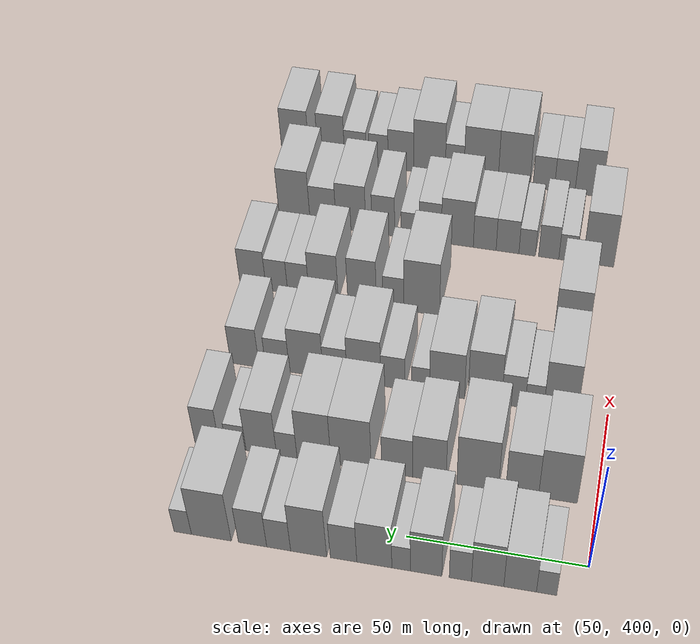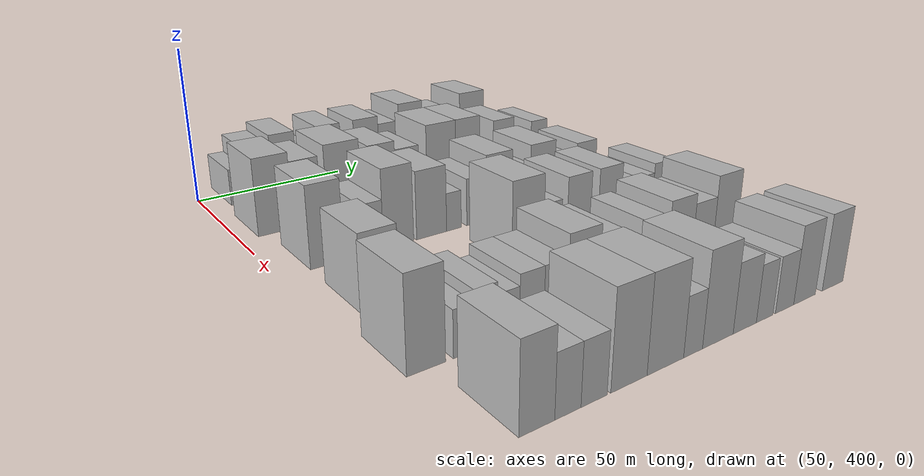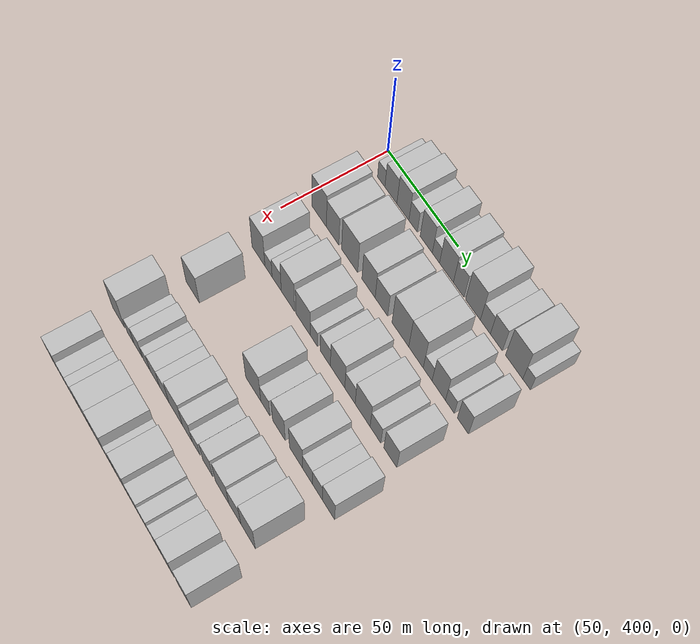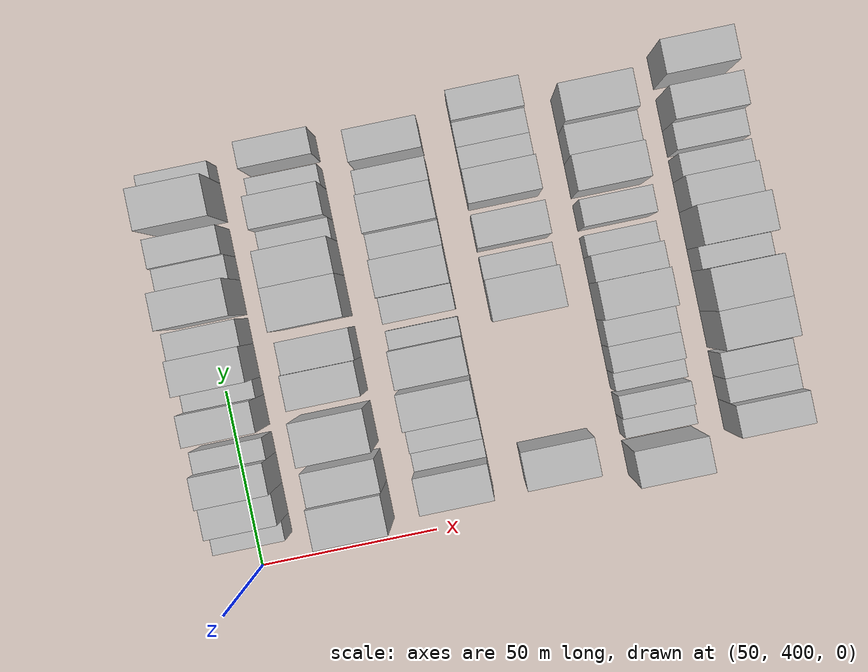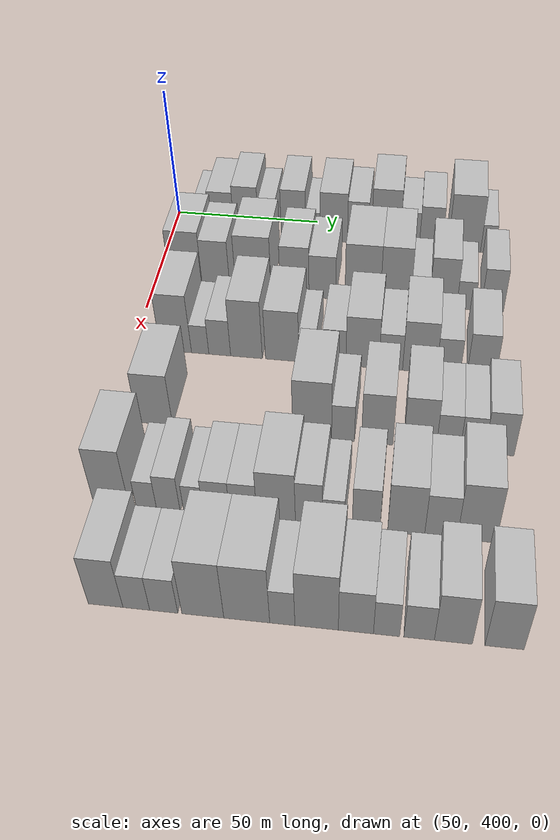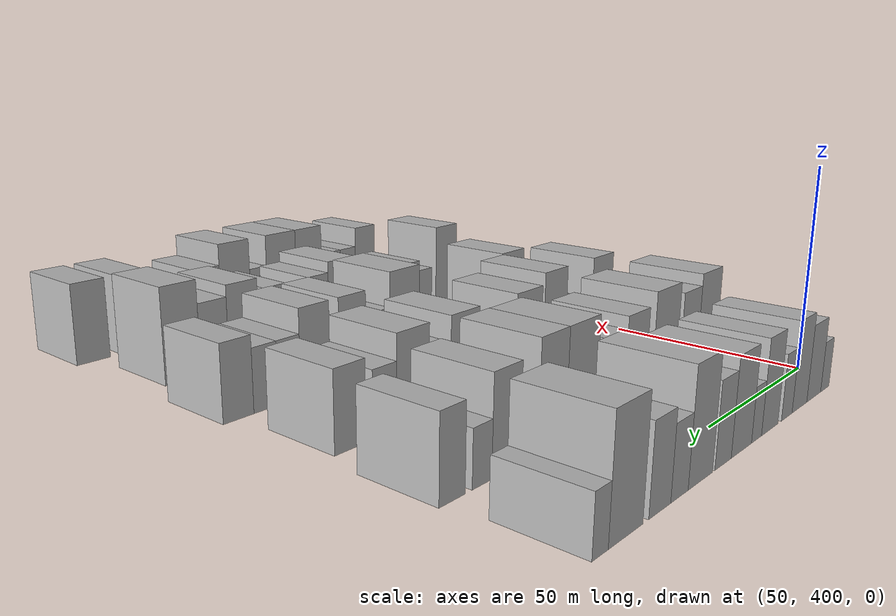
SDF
<sdf version="1.6">
 <world name="default">
  <model name="building_99">
   <static>1</static>
   <pose>50.0000 410.3067 0 0.000000 0.000000 0.000000</pose>
   <link name="link">
    <pose>0 0 6.00 0 0 0</pose>
    <collision name="collision"><geometry><box><size>20.0000 5.4312 12.0000</size></box></geometry></collision>
    <visual name="visual">
     <cast_shadows>0</cast_shadows>
     <geometry><box><size>20.0000 5.4312 12.0000</size></box></geometry>
     <material>
      <script>
       <uri>model://HANNAS_wall/materials/scripts</uri>
       <uri>model://HANNAS_wall/materials/textures</uri>
       <name>vrc/HANNAS_wall</name>
      </script>
     </material>
    </visual>
   </link>
  </model>
  <model name="building_100">
   <static>1</static>
   <pose>50.0000 417.3888 0 0.000000 0.000000 0.000000</pose>
   <link name="link">
    <pose>0 0 9.00 0 0 0</pose>
    <collision name="collision"><geometry><box><size>20.0000 8.7328 18.0000</size></box></geometry></collision>
    <visual name="visual">
     <cast_shadows>0</cast_shadows>
     <geometry><box><size>20.0000 8.7328 18.0000</size></box></geometry>
     <material>
      <script>
       <uri>model://HANNAS_wall/materials/scripts</uri>
       <uri>model://HANNAS_wall/materials/textures</uri>
       <name>vrc/HANNAS_wall</name>
      </script>
     </material>
    </visual>
   </link>
  </model>
  <model name="building_101">
   <static>1</static>
   <pose>50.0000 426.1150 0 0.000000 0.000000 0.000000</pose>
   <link name="link">
    <pose>0 0 10.50 0 0 0</pose>
    <collision name="collision"><geometry><box><size>20.0000 8.7195 21.0000</size></box></geometry></collision>
    <visual name="visual">
     <cast_shadows>0</cast_shadows>
     <geometry><box><size>20.0000 8.7195 21.0000</size></box></geometry>
     <material>
      <script>
       <uri>model://HANNAS_wall/materials/scripts</uri>
       <uri>model://HANNAS_wall/materials/textures</uri>
       <name>vrc/HANNAS_wall</name>
      </script>
     </material>
    </visual>
   </link>
  </model>
  <model name="building_102">
   <static>1</static>
   <pose>50.0000 433.4828 0 0.000000 0.000000 0.000000</pose>
   <link name="link">
    <pose>0 0 7.50 0 0 0</pose>
    <collision name="collision"><geometry><box><size>20.0000 6.0162 15.0000</size></box></geometry></collision>
    <visual name="visual">
     <cast_shadows>0</cast_shadows>
     <geometry><box><size>20.0000 6.0162 15.0000</size></box></geometry>
     <material>
      <script>
       <uri>model://HANNAS_wall/materials/scripts</uri>
       <uri>model://HANNAS_wall/materials/textures</uri>
       <name>vrc/HANNAS_wall</name>
      </script>
     </material>
    </visual>
   </link>
  </model>
  <model name="building_103">
   <static>1</static>
   <pose>50.0000 442.7859 0 0.000000 0.000000 0.000000</pose>
   <link name="link">
    <pose>0 0 10.50 0 0 0</pose>
    <collision name="collision"><geometry><box><size>20.0000 8.5901 21.0000</size></box></geometry></collision>
    <visual name="visual">
     <cast_shadows>0</cast_shadows>
     <geometry><box><size>20.0000 8.5901 21.0000</size></box></geometry>
     <material>
      <script>
       <uri>model://HANNAS_wall/materials/scripts</uri>
       <uri>model://HANNAS_wall/materials/textures</uri>
       <name>vrc/HANNAS_wall</name>
      </script>
     </material>
    </visual>
   </link>
  </model>
  <model name="building_104">
   <static>1</static>
   <pose>50.0000 449.5905 0 0.000000 0.000000 0.000000</pose>
   <link name="link">
    <pose>0 0 6.00 0 0 0</pose>
    <collision name="collision"><geometry><box><size>20.0000 5.0190 12.0000</size></box></geometry></collision>
    <visual name="visual">
     <cast_shadows>0</cast_shadows>
     <geometry><box><size>20.0000 5.0190 12.0000</size></box></geometry>
     <material>
      <script>
       <uri>model://HANNAS_wall/materials/scripts</uri>
       <uri>model://HANNAS_wall/materials/textures</uri>
       <name>vrc/HANNAS_wall</name>
      </script>
     </material>
    </visual>
   </link>
  </model>
  <model name="building_105">
   <static>1</static>
   <pose>50.0000 456.9073 0 0.000000 0.000000 0.000000</pose>
   <link name="link">
    <pose>0 0 10.50 0 0 0</pose>
    <collision name="collision"><geometry><box><size>20.0000 9.6147 21.0000</size></box></geometry></collision>
    <visual name="visual">
     <cast_shadows>0</cast_shadows>
     <geometry><box><size>20.0000 9.6147 21.0000</size></box></geometry>
     <material>
      <script>
       <uri>model://HANNAS_wall/materials/scripts</uri>
       <uri>model://HANNAS_wall/materials/textures</uri>
       <name>vrc/HANNAS_wall</name>
      </script>
     </material>
    </visual>
   </link>
  </model>
  <model name="building_106">
   <static>1</static>
   <pose>50.0000 465.3660 0 0.000000 0.000000 0.000000</pose>
   <link name="link">
    <pose>0 0 9.00 0 0 0</pose>
    <collision name="collision"><geometry><box><size>20.0000 7.3027 18.0000</size></box></geometry></collision>
    <visual name="visual">
     <cast_shadows>0</cast_shadows>
     <geometry><box><size>20.0000 7.3027 18.0000</size></box></geometry>
     <material>
      <script>
       <uri>model://HANNAS_wall/materials/scripts</uri>
       <uri>model://HANNAS_wall/materials/textures</uri>
       <name>vrc/HANNAS_wall</name>
      </script>
     </material>
    </visual>
   </link>
  </model>
  <model name="building_107">
   <static>1</static>
   <pose>50.0000 475.0083 0 0.000000 0.000000 0.000000</pose>
   <link name="link">
    <pose>0 0 12.00 0 0 0</pose>
    <collision name="collision"><geometry><box><size>20.0000 9.9820 24.0000</size></box></geometry></collision>
    <visual name="visual">
     <cast_shadows>0</cast_shadows>
     <geometry><box><size>20.0000 9.9820 24.0000</size></box></geometry>
     <material>
      <script>
       <uri>model://HANNAS_wall/materials/scripts</uri>
       <uri>model://HANNAS_wall/materials/textures</uri>
       <name>vrc/HANNAS_wall</name>
      </script>
     </material>
    </visual>
   </link>
  </model>
  <model name="building_108">
   <static>1</static>
   <pose>50.0000 483.3332 0 0.000000 0.000000 0.000000</pose>
   <link name="link">
    <pose>0 0 7.50 0 0 0</pose>
    <collision name="collision"><geometry><box><size>20.0000 6.6677 15.0000</size></box></geometry></collision>
    <visual name="visual">
     <cast_shadows>0</cast_shadows>
     <geometry><box><size>20.0000 6.6677 15.0000</size></box></geometry>
     <material>
      <script>
       <uri>model://HANNAS_wall/materials/scripts</uri>
       <uri>model://HANNAS_wall/materials/textures</uri>
       <name>vrc/HANNAS_wall</name>
      </script>
     </material>
    </visual>
   </link>
  </model>
  <model name="building_109">
   <static>1</static>
   <pose>50.0000 490.6267 0 0.000000 0.000000 0.000000</pose>
   <link name="link">
    <pose>0 0 9.00 0 0 0</pose>
    <collision name="collision"><geometry><box><size>20.0000 7.9194 18.0000</size></box></geometry></collision>
    <visual name="visual">
     <cast_shadows>0</cast_shadows>
     <geometry><box><size>20.0000 7.9194 18.0000</size></box></geometry>
     <material>
      <script>
       <uri>model://HANNAS_wall/materials/scripts</uri>
       <uri>model://HANNAS_wall/materials/textures</uri>
       <name>vrc/HANNAS_wall</name>
      </script>
     </material>
    </visual>
   </link>
  </model>
  <model name="building_110">
   <static>1</static>
   <pose>50.0000 502.1823 0 0.000000 0.000000 0.000000</pose>
   <link name="link">
    <pose>0 0 12.00 0 0 0</pose>
    <collision name="collision"><geometry><box><size>20.0000 11.1917 24.0000</size></box></geometry></collision>
    <visual name="visual">
     <cast_shadows>0</cast_shadows>
     <geometry><box><size>20.0000 11.1917 24.0000</size></box></geometry>
     <material>
      <script>
       <uri>model://HANNAS_wall/materials/scripts</uri>
       <uri>model://HANNAS_wall/materials/textures</uri>
       <name>vrc/HANNAS_wall</name>
      </script>
     </material>
    </visual>
   </link>
  </model>
  <model name="building_111">
   <static>1</static>
   <pose>50.0000 510.2462 0 0.000000 0.000000 0.000000</pose>
   <link name="link">
    <pose>0 0 6.00 0 0 0</pose>
    <collision name="collision"><geometry><box><size>20.0000 4.9362 12.0000</size></box></geometry></collision>
    <visual name="visual">
     <cast_shadows>0</cast_shadows>
     <geometry><box><size>20.0000 4.9362 12.0000</size></box></geometry>
     <material>
      <script>
       <uri>model://HANNAS_wall/materials/scripts</uri>
       <uri>model://HANNAS_wall/materials/textures</uri>
       <name>vrc/HANNAS_wall</name>
      </script>
     </material>
    </visual>
   </link>
  </model>
  <model name="building_211">
   <static>1</static>
   <pose>79.0000 410.9110 0 0.000000 0.000000 0.000000</pose>
   <link name="link">
    <pose>0 0 12.00 0 0 0</pose>
    <collision name="collision"><geometry><box><size>20.0000 10.8549 24.0000</size></box></geometry></collision>
    <visual name="visual">
     <cast_shadows>0</cast_shadows>
     <geometry><box><size>20.0000 10.8549 24.0000</size></box></geometry>
     <material>
      <script>
       <uri>model://HANNAS_wall/materials/scripts</uri>
       <uri>model://HANNAS_wall/materials/textures</uri>
       <name>vrc/HANNAS_wall</name>
      </script>
     </material>
    </visual>
   </link>
  </model>
  <model name="building_212">
   <static>1</static>
   <pose>79.0000 420.9466 0 0.000000 0.000000 0.000000</pose>
   <link name="link">
    <pose>0 0 10.50 0 0 0</pose>
    <collision name="collision"><geometry><box><size>20.0000 9.2163 21.0000</size></box></geometry></collision>
    <visual name="visual">
     <cast_shadows>0</cast_shadows>
     <geometry><box><size>20.0000 9.2163 21.0000</size></box></geometry>
     <material>
      <script>
       <uri>model://HANNAS_wall/materials/scripts</uri>
       <uri>model://HANNAS_wall/materials/textures</uri>
       <name>vrc/HANNAS_wall</name>
      </script>
     </material>
    </visual>
   </link>
  </model>
  <model name="building_213">
   <static>1</static>
   <pose>79.0000 433.4388 0 0.000000 0.000000 0.000000</pose>
   <link name="link">
    <pose>0 0 12.00 0 0 0</pose>
    <collision name="collision"><geometry><box><size>20.0000 11.7680 24.0000</size></box></geometry></collision>
    <visual name="visual">
     <cast_shadows>0</cast_shadows>
     <geometry><box><size>20.0000 11.7680 24.0000</size></box></geometry>
     <material>
      <script>
       <uri>model://HANNAS_wall/materials/scripts</uri>
       <uri>model://HANNAS_wall/materials/textures</uri>
       <name>vrc/HANNAS_wall</name>
      </script>
     </material>
    </visual>
   </link>
  </model>
  <model name="building_214">
   <static>1</static>
   <pose>79.0000 447.0718 0 0.000000 0.000000 0.000000</pose>
   <link name="link">
    <pose>0 0 10.50 0 0 0</pose>
    <collision name="collision"><geometry><box><size>20.0000 9.4981 21.0000</size></box></geometry></collision>
    <visual name="visual">
     <cast_shadows>0</cast_shadows>
     <geometry><box><size>20.0000 9.4981 21.0000</size></box></geometry>
     <material>
      <script>
       <uri>model://HANNAS_wall/materials/scripts</uri>
       <uri>model://HANNAS_wall/materials/textures</uri>
       <name>vrc/HANNAS_wall</name>
      </script>
     </material>
    </visual>
   </link>
  </model>
  <model name="building_215">
   <static>1</static>
   <pose>79.0000 456.2429 0 0.000000 0.000000 0.000000</pose>
   <link name="link">
    <pose>0 0 9.00 0 0 0</pose>
    <collision name="collision"><geometry><box><size>20.0000 8.8441 18.0000</size></box></geometry></collision>
    <visual name="visual">
     <cast_shadows>0</cast_shadows>
     <geometry><box><size>20.0000 8.8441 18.0000</size></box></geometry>
     <material>
      <script>
       <uri>model://HANNAS_wall/materials/scripts</uri>
       <uri>model://HANNAS_wall/materials/textures</uri>
       <name>vrc/HANNAS_wall</name>
      </script>
     </material>
    </visual>
   </link>
  </model>
  <model name="building_216">
   <static>1</static>
   <pose>79.0000 469.4666 0 0.000000 0.000000 0.000000</pose>
   <link name="link">
    <pose>0 0 12.00 0 0 0</pose>
    <collision name="collision"><geometry><box><size>20.0000 11.6032 24.0000</size></box></geometry></collision>
    <visual name="visual">
     <cast_shadows>0</cast_shadows>
     <geometry><box><size>20.0000 11.6032 24.0000</size></box></geometry>
     <material>
      <script>
       <uri>model://HANNAS_wall/materials/scripts</uri>
       <uri>model://HANNAS_wall/materials/textures</uri>
       <name>vrc/HANNAS_wall</name>
      </script>
     </material>
    </visual>
   </link>
  </model>
  <model name="building_217">
   <static>1</static>
   <pose>79.0000 480.1981 0 0.000000 0.000000 0.000000</pose>
   <link name="link">
    <pose>0 0 12.00 0 0 0</pose>
    <collision name="collision"><geometry><box><size>20.0000 9.8598 24.0000</size></box></geometry></collision>
    <visual name="visual">
     <cast_shadows>0</cast_shadows>
     <geometry><box><size>20.0000 9.8598 24.0000</size></box></geometry>
     <material>
      <script>
       <uri>model://HANNAS_wall/materials/scripts</uri>
       <uri>model://HANNAS_wall/materials/textures</uri>
       <name>vrc/HANNAS_wall</name>
      </script>
     </material>
    </visual>
   </link>
  </model>
  <model name="building_218">
   <static>1</static>
   <pose>79.0000 488.1156 0 0.000000 0.000000 0.000000</pose>
   <link name="link">
    <pose>0 0 6.00 0 0 0</pose>
    <collision name="collision"><geometry><box><size>20.0000 5.9753 12.0000</size></box></geometry></collision>
    <visual name="visual">
     <cast_shadows>0</cast_shadows>
     <geometry><box><size>20.0000 5.9753 12.0000</size></box></geometry>
     <material>
      <script>
       <uri>model://HANNAS_wall/materials/scripts</uri>
       <uri>model://HANNAS_wall/materials/textures</uri>
       <name>vrc/HANNAS_wall</name>
      </script>
     </material>
    </visual>
   </link>
  </model>
  <model name="building_219">
   <static>1</static>
   <pose>79.0000 495.5623 0 0.000000 0.000000 0.000000</pose>
   <link name="link">
    <pose>0 0 10.50 0 0 0</pose>
    <collision name="collision"><geometry><box><size>20.0000 8.9180 21.0000</size></box></geometry></collision>
    <visual name="visual">
     <cast_shadows>0</cast_shadows>
     <geometry><box><size>20.0000 8.9180 21.0000</size></box></geometry>
     <material>
      <script>
       <uri>model://HANNAS_wall/materials/scripts</uri>
       <uri>model://HANNAS_wall/materials/textures</uri>
       <name>vrc/HANNAS_wall</name>
      </script>
     </material>
    </visual>
   </link>
  </model>
  <model name="building_220">
   <static>1</static>
   <pose>79.0000 502.9385 0 0.000000 0.000000 0.000000</pose>
   <link name="link">
    <pose>0 0 6.00 0 0 0</pose>
    <collision name="collision"><geometry><box><size>20.0000 5.8344 12.0000</size></box></geometry></collision>
    <visual name="visual">
     <cast_shadows>0</cast_shadows>
     <geometry><box><size>20.0000 5.8344 12.0000</size></box></geometry>
     <material>
      <script>
       <uri>model://HANNAS_wall/materials/scripts</uri>
       <uri>model://HANNAS_wall/materials/textures</uri>
       <name>vrc/HANNAS_wall</name>
      </script>
     </material>
    </visual>
   </link>
  </model>
  <model name="building_221">
   <static>1</static>
   <pose>79.0000 511.4904 0 0.000000 0.000000 0.000000</pose>
   <link name="link">
    <pose>0 0 9.00 0 0 0</pose>
    <collision name="collision"><geometry><box><size>20.0000 7.2694 18.0000</size></box></geometry></collision>
    <visual name="visual">
     <cast_shadows>0</cast_shadows>
     <geometry><box><size>20.0000 7.2694 18.0000</size></box></geometry>
     <material>
      <script>
       <uri>model://HANNAS_wall/materials/scripts</uri>
       <uri>model://HANNAS_wall/materials/textures</uri>
       <name>vrc/HANNAS_wall</name>
      </script>
     </material>
    </visual>
   </link>
  </model>
  <model name="building_331">
   <static>1</static>
   <pose>108.0000 413.7506 0 0.000000 0.000000 0.000000</pose>
   <link name="link">
    <pose>0 0 12.00 0 0 0</pose>
    <collision name="collision"><geometry><box><size>20.0000 9.8677 24.0000</size></box></geometry></collision>
    <visual name="visual">
     <cast_shadows>0</cast_shadows>
     <geometry><box><size>20.0000 9.8677 24.0000</size></box></geometry>
     <material>
      <script>
       <uri>model://HANNAS_wall/materials/scripts</uri>
       <uri>model://HANNAS_wall/materials/textures</uri>
       <name>vrc/HANNAS_wall</name>
      </script>
     </material>
    </visual>
   </link>
  </model>
  <model name="building_332">
   <static>1</static>
   <pose>108.0000 421.4104 0 0.000000 0.000000 0.000000</pose>
   <link name="link">
    <pose>0 0 6.00 0 0 0</pose>
    <collision name="collision"><geometry><box><size>20.0000 5.4518 12.0000</size></box></geometry></collision>
    <visual name="visual">
     <cast_shadows>0</cast_shadows>
     <geometry><box><size>20.0000 5.4518 12.0000</size></box></geometry>
     <material>
      <script>
       <uri>model://HANNAS_wall/materials/scripts</uri>
       <uri>model://HANNAS_wall/materials/textures</uri>
       <name>vrc/HANNAS_wall</name>
      </script>
     </material>
    </visual>
   </link>
  </model>
  <model name="building_333">
   <static>1</static>
   <pose>108.0000 427.5654 0 0.000000 0.000000 0.000000</pose>
   <link name="link">
    <pose>0 0 7.50 0 0 0</pose>
    <collision name="collision"><geometry><box><size>20.0000 6.8582 15.0000</size></box></geometry></collision>
    <visual name="visual">
     <cast_shadows>0</cast_shadows>
     <geometry><box><size>20.0000 6.8582 15.0000</size></box></geometry>
     <material>
      <script>
       <uri>model://HANNAS_wall/materials/scripts</uri>
       <uri>model://HANNAS_wall/materials/textures</uri>
       <name>vrc/HANNAS_wall</name>
      </script>
     </material>
    </visual>
   </link>
  </model>
  <model name="building_334">
   <static>1</static>
   <pose>108.0000 435.9424 0 0.000000 0.000000 0.000000</pose>
   <link name="link">
    <pose>0 0 12.00 0 0 0</pose>
    <collision name="collision"><geometry><box><size>20.0000 9.8958 24.0000</size></box></geometry></collision>
    <visual name="visual">
     <cast_shadows>0</cast_shadows>
     <geometry><box><size>20.0000 9.8958 24.0000</size></box></geometry>
     <material>
      <script>
       <uri>model://HANNAS_wall/materials/scripts</uri>
       <uri>model://HANNAS_wall/materials/textures</uri>
       <name>vrc/HANNAS_wall</name>
      </script>
     </material>
    </visual>
   </link>
  </model>
  <model name="building_335">
   <static>1</static>
   <pose>108.0000 447.0856 0 0.000000 0.000000 0.000000</pose>
   <link name="link">
    <pose>0 0 10.50 0 0 0</pose>
    <collision name="collision"><geometry><box><size>20.0000 10.3907 21.0000</size></box></geometry></collision>
    <visual name="visual">
     <cast_shadows>0</cast_shadows>
     <geometry><box><size>20.0000 10.3907 21.0000</size></box></geometry>
     <material>
      <script>
       <uri>model://HANNAS_wall/materials/scripts</uri>
       <uri>model://HANNAS_wall/materials/textures</uri>
       <name>vrc/HANNAS_wall</name>
      </script>
     </material>
    </visual>
   </link>
  </model>
  <model name="building_336">
   <static>1</static>
   <pose>108.0000 454.9230 0 0.000000 0.000000 0.000000</pose>
   <link name="link">
    <pose>0 0 6.00 0 0 0</pose>
    <collision name="collision"><geometry><box><size>20.0000 5.2842 12.0000</size></box></geometry></collision>
    <visual name="visual">
     <cast_shadows>0</cast_shadows>
     <geometry><box><size>20.0000 5.2842 12.0000</size></box></geometry>
     <material>
      <script>
       <uri>model://HANNAS_wall/materials/scripts</uri>
       <uri>model://HANNAS_wall/materials/textures</uri>
       <name>vrc/HANNAS_wall</name>
      </script>
     </material>
    </visual>
   </link>
  </model>
  <model name="building_337">
   <static>1</static>
   <pose>108.0000 463.1570 0 0.000000 0.000000 0.000000</pose>
   <link name="link">
    <pose>0 0 7.50 0 0 0</pose>
    <collision name="collision"><geometry><box><size>20.0000 7.1838 15.0000</size></box></geometry></collision>
    <visual name="visual">
     <cast_shadows>0</cast_shadows>
     <geometry><box><size>20.0000 7.1838 15.0000</size></box></geometry>
     <material>
      <script>
       <uri>model://HANNAS_wall/materials/scripts</uri>
       <uri>model://HANNAS_wall/materials/textures</uri>
       <name>vrc/HANNAS_wall</name>
      </script>
     </material>
    </visual>
   </link>
  </model>
  <model name="building_338">
   <static>1</static>
   <pose>108.0000 471.8195 0 0.000000 0.000000 0.000000</pose>
   <link name="link">
    <pose>0 0 10.50 0 0 0</pose>
    <collision name="collision"><geometry><box><size>20.0000 10.1413 21.0000</size></box></geometry></collision>
    <visual name="visual">
     <cast_shadows>0</cast_shadows>
     <geometry><box><size>20.0000 10.1413 21.0000</size></box></geometry>
     <material>
      <script>
       <uri>model://HANNAS_wall/materials/scripts</uri>
       <uri>model://HANNAS_wall/materials/textures</uri>
       <name>vrc/HANNAS_wall</name>
      </script>
     </material>
    </visual>
   </link>
  </model>
  <model name="building_339">
   <static>1</static>
   <pose>108.0000 480.5008 0 0.000000 0.000000 0.000000</pose>
   <link name="link">
    <pose>0 0 7.50 0 0 0</pose>
    <collision name="collision"><geometry><box><size>20.0000 7.2212 15.0000</size></box></geometry></collision>
    <visual name="visual">
     <cast_shadows>0</cast_shadows>
     <geometry><box><size>20.0000 7.2212 15.0000</size></box></geometry>
     <material>
      <script>
       <uri>model://HANNAS_wall/materials/scripts</uri>
       <uri>model://HANNAS_wall/materials/textures</uri>
       <name>vrc/HANNAS_wall</name>
      </script>
     </material>
    </visual>
   </link>
  </model>
  <model name="building_340">
   <static>1</static>
   <pose>108.0000 489.2400 0 0.000000 0.000000 0.000000</pose>
   <link name="link">
    <pose>0 0 10.50 0 0 0</pose>
    <collision name="collision"><geometry><box><size>20.0000 10.2573 21.0000</size></box></geometry></collision>
    <visual name="visual">
     <cast_shadows>0</cast_shadows>
     <geometry><box><size>20.0000 10.2573 21.0000</size></box></geometry>
     <material>
      <script>
       <uri>model://HANNAS_wall/materials/scripts</uri>
       <uri>model://HANNAS_wall/materials/textures</uri>
       <name>vrc/HANNAS_wall</name>
      </script>
     </material>
    </visual>
   </link>
  </model>
  <model name="building_341">
   <static>1</static>
   <pose>108.0000 497.9916 0 0.000000 0.000000 0.000000</pose>
   <link name="link">
    <pose>0 0 7.50 0 0 0</pose>
    <collision name="collision"><geometry><box><size>20.0000 7.2459 15.0000</size></box></geometry></collision>
    <visual name="visual">
     <cast_shadows>0</cast_shadows>
     <geometry><box><size>20.0000 7.2459 15.0000</size></box></geometry>
     <material>
      <script>
       <uri>model://HANNAS_wall/materials/scripts</uri>
       <uri>model://HANNAS_wall/materials/textures</uri>
       <name>vrc/HANNAS_wall</name>
      </script>
     </material>
    </visual>
   </link>
  </model>
  <model name="building_342">
   <static>1</static>
   <pose>108.0000 507.9660 0 0.000000 0.000000 0.000000</pose>
   <link name="link">
    <pose>0 0 9.00 0 0 0</pose>
    <collision name="collision"><geometry><box><size>20.0000 8.7028 18.0000</size></box></geometry></collision>
    <visual name="visual">
     <cast_shadows>0</cast_shadows>
     <geometry><box><size>20.0000 8.7028 18.0000</size></box></geometry>
     <material>
      <script>
       <uri>model://HANNAS_wall/materials/scripts</uri>
       <uri>model://HANNAS_wall/materials/textures</uri>
       <name>vrc/HANNAS_wall</name>
      </script>
     </material>
    </visual>
   </link>
  </model>
  <model name="building_445">
   <static>1</static>
   <pose>137.0000 414.0259 0 0.000000 0.000000 0.000000</pose>
   <link name="link">
    <pose>0 0 10.50 0 0 0</pose>
    <collision name="collision"><geometry><box><size>20.0000 10.4635 21.0000</size></box></geometry></collision>
    <visual name="visual">
     <cast_shadows>0</cast_shadows>
     <geometry><box><size>20.0000 10.4635 21.0000</size></box></geometry>
     <material>
      <script>
       <uri>model://HANNAS_wall/materials/scripts</uri>
       <uri>model://HANNAS_wall/materials/textures</uri>
       <name>vrc/HANNAS_wall</name>
      </script>
     </material>
    </visual>
   </link>
  </model>
  <model name="building_446">
   <static>1</static>
   <pose>137.0000 459.9204 0 0.000000 0.000000 0.000000</pose>
   <link name="link">
    <pose>0 0 12.00 0 0 0</pose>
    <collision name="collision"><geometry><box><size>20.0000 11.1085 24.0000</size></box></geometry></collision>
    <visual name="visual">
     <cast_shadows>0</cast_shadows>
     <geometry><box><size>20.0000 11.1085 24.0000</size></box></geometry>
     <material>
      <script>
       <uri>model://HANNAS_wall/materials/scripts</uri>
       <uri>model://HANNAS_wall/materials/textures</uri>
       <name>vrc/HANNAS_wall</name>
      </script>
     </material>
    </visual>
   </link>
  </model>
  <model name="building_447">
   <static>1</static>
   <pose>137.0000 468.7341 0 0.000000 0.000000 0.000000</pose>
   <link name="link">
    <pose>0 0 7.50 0 0 0</pose>
    <collision name="collision"><geometry><box><size>20.0000 6.5189 15.0000</size></box></geometry></collision>
    <visual name="visual">
     <cast_shadows>0</cast_shadows>
     <geometry><box><size>20.0000 6.5189 15.0000</size></box></geometry>
     <material>
      <script>
       <uri>model://HANNAS_wall/materials/scripts</uri>
       <uri>model://HANNAS_wall/materials/textures</uri>
       <name>vrc/HANNAS_wall</name>
      </script>
     </material>
    </visual>
   </link>
  </model>
  <model name="building_448">
   <static>1</static>
   <pose>137.0000 478.4845 0 0.000000 0.000000 0.000000</pose>
   <link name="link">
    <pose>0 0 10.50 0 0 0</pose>
    <collision name="collision"><geometry><box><size>20.0000 8.9819 21.0000</size></box></geometry></collision>
    <visual name="visual">
     <cast_shadows>0</cast_shadows>
     <geometry><box><size>20.0000 8.9819 21.0000</size></box></geometry>
     <material>
      <script>
       <uri>model://HANNAS_wall/materials/scripts</uri>
       <uri>model://HANNAS_wall/materials/textures</uri>
       <name>vrc/HANNAS_wall</name>
      </script>
     </material>
    </visual>
   </link>
  </model>
  <model name="building_449">
   <static>1</static>
   <pose>137.0000 490.5918 0 0.000000 0.000000 0.000000</pose>
   <link name="link">
    <pose>0 0 10.50 0 0 0</pose>
    <collision name="collision"><geometry><box><size>20.0000 9.2328 21.0000</size></box></geometry></collision>
    <visual name="visual">
     <cast_shadows>0</cast_shadows>
     <geometry><box><size>20.0000 9.2328 21.0000</size></box></geometry>
     <material>
      <script>
       <uri>model://HANNAS_wall/materials/scripts</uri>
       <uri>model://HANNAS_wall/materials/textures</uri>
       <name>vrc/HANNAS_wall</name>
      </script>
     </material>
    </visual>
   </link>
  </model>
  <model name="building_450">
   <static>1</static>
   <pose>137.0000 498.5825 0 0.000000 0.000000 0.000000</pose>
   <link name="link">
    <pose>0 0 7.50 0 0 0</pose>
    <collision name="collision"><geometry><box><size>20.0000 6.7486 15.0000</size></box></geometry></collision>
    <visual name="visual">
     <cast_shadows>0</cast_shadows>
     <geometry><box><size>20.0000 6.7486 15.0000</size></box></geometry>
     <material>
      <script>
       <uri>model://HANNAS_wall/materials/scripts</uri>
       <uri>model://HANNAS_wall/materials/textures</uri>
       <name>vrc/HANNAS_wall</name>
      </script>
     </material>
    </visual>
   </link>
  </model>
  <model name="building_451">
   <static>1</static>
   <pose>137.0000 505.3755 0 0.000000 0.000000 0.000000</pose>
   <link name="link">
    <pose>0 0 7.50 0 0 0</pose>
    <collision name="collision"><geometry><box><size>20.0000 6.8374 15.0000</size></box></geometry></collision>
    <visual name="visual">
     <cast_shadows>0</cast_shadows>
     <geometry><box><size>20.0000 6.8374 15.0000</size></box></geometry>
     <material>
      <script>
       <uri>model://HANNAS_wall/materials/scripts</uri>
       <uri>model://HANNAS_wall/materials/textures</uri>
       <name>vrc/HANNAS_wall</name>
      </script>
     </material>
    </visual>
   </link>
  </model>
  <model name="building_452">
   <static>1</static>
   <pose>137.0000 512.9288 0 0.000000 0.000000 0.000000</pose>
   <link name="link">
    <pose>0 0 9.00 0 0 0</pose>
    <collision name="collision"><geometry><box><size>20.0000 8.2692 18.0000</size></box></geometry></collision>
    <visual name="visual">
     <cast_shadows>0</cast_shadows>
     <geometry><box><size>20.0000 8.2692 18.0000</size></box></geometry>
     <material>
      <script>
       <uri>model://HANNAS_wall/materials/scripts</uri>
       <uri>model://HANNAS_wall/materials/textures</uri>
       <name>vrc/HANNAS_wall</name>
      </script>
     </material>
    </visual>
   </link>
  </model>
  <model name="building_559">
   <static>1</static>
   <pose>166.0000 408.9972 0 0.000000 0.000000 0.000000</pose>
   <link name="link">
    <pose>0 0 12.00 0 0 0</pose>
    <collision name="collision"><geometry><box><size>20.0000 9.7505 24.0000</size></box></geometry></collision>
    <visual name="visual">
     <cast_shadows>0</cast_shadows>
     <geometry><box><size>20.0000 9.7505 24.0000</size></box></geometry>
     <material>
      <script>
       <uri>model://HANNAS_wall/materials/scripts</uri>
       <uri>model://HANNAS_wall/materials/textures</uri>
       <name>vrc/HANNAS_wall</name>
      </script>
     </material>
    </visual>
   </link>
  </model>
  <model name="building_560">
   <static>1</static>
   <pose>166.0000 418.6507 0 0.000000 0.000000 0.000000</pose>
   <link name="link">
    <pose>0 0 6.00 0 0 0</pose>
    <collision name="collision"><geometry><box><size>20.0000 5.5566 12.0000</size></box></geometry></collision>
    <visual name="visual">
     <cast_shadows>0</cast_shadows>
     <geometry><box><size>20.0000 5.5566 12.0000</size></box></geometry>
     <material>
      <script>
       <uri>model://HANNAS_wall/materials/scripts</uri>
       <uri>model://HANNAS_wall/materials/textures</uri>
       <name>vrc/HANNAS_wall</name>
      </script>
     </material>
    </visual>
   </link>
  </model>
  <model name="building_561">
   <static>1</static>
   <pose>166.0000 424.6355 0 0.000000 0.000000 0.000000</pose>
   <link name="link">
    <pose>0 0 7.50 0 0 0</pose>
    <collision name="collision"><geometry><box><size>20.0000 6.4130 15.0000</size></box></geometry></collision>
    <visual name="visual">
     <cast_shadows>0</cast_shadows>
     <geometry><box><size>20.0000 6.4130 15.0000</size></box></geometry>
     <material>
      <script>
       <uri>model://HANNAS_wall/materials/scripts</uri>
       <uri>model://HANNAS_wall/materials/textures</uri>
       <name>vrc/HANNAS_wall</name>
      </script>
     </material>
    </visual>
   </link>
  </model>
  <model name="building_562">
   <static>1</static>
   <pose>166.0000 431.4591 0 0.000000 0.000000 0.000000</pose>
   <link name="link">
    <pose>0 0 6.00 0 0 0</pose>
    <collision name="collision"><geometry><box><size>20.0000 5.2341 12.0000</size></box></geometry></collision>
    <visual name="visual">
     <cast_shadows>0</cast_shadows>
     <geometry><box><size>20.0000 5.2341 12.0000</size></box></geometry>
     <material>
      <script>
       <uri>model://HANNAS_wall/materials/scripts</uri>
       <uri>model://HANNAS_wall/materials/textures</uri>
       <name>vrc/HANNAS_wall</name>
      </script>
     </material>
    </visual>
   </link>
  </model>
  <model name="building_563">
   <static>1</static>
   <pose>166.0000 437.7130 0 0.000000 0.000000 0.000000</pose>
   <link name="link">
    <pose>0 0 7.50 0 0 0</pose>
    <collision name="collision"><geometry><box><size>20.0000 7.2738 15.0000</size></box></geometry></collision>
    <visual name="visual">
     <cast_shadows>0</cast_shadows>
     <geometry><box><size>20.0000 7.2738 15.0000</size></box></geometry>
     <material>
      <script>
       <uri>model://HANNAS_wall/materials/scripts</uri>
       <uri>model://HANNAS_wall/materials/textures</uri>
       <name>vrc/HANNAS_wall</name>
      </script>
     </material>
    </visual>
   </link>
  </model>
  <model name="building_564">
   <static>1</static>
   <pose>166.0000 445.0038 0 0.000000 0.000000 0.000000</pose>
   <link name="link">
    <pose>0 0 7.50 0 0 0</pose>
    <collision name="collision"><geometry><box><size>20.0000 7.3078 15.0000</size></box></geometry></collision>
    <visual name="visual">
     <cast_shadows>0</cast_shadows>
     <geometry><box><size>20.0000 7.3078 15.0000</size></box></geometry>
     <material>
      <script>
       <uri>model://HANNAS_wall/materials/scripts</uri>
       <uri>model://HANNAS_wall/materials/textures</uri>
       <name>vrc/HANNAS_wall</name>
      </script>
     </material>
    </visual>
   </link>
  </model>
  <model name="building_565">
   <static>1</static>
   <pose>166.0000 453.8010 0 0.000000 0.000000 0.000000</pose>
   <link name="link">
    <pose>0 0 10.50 0 0 0</pose>
    <collision name="collision"><geometry><box><size>20.0000 10.2865 21.0000</size></box></geometry></collision>
    <visual name="visual">
     <cast_shadows>0</cast_shadows>
     <geometry><box><size>20.0000 10.2865 21.0000</size></box></geometry>
     <material>
      <script>
       <uri>model://HANNAS_wall/materials/scripts</uri>
       <uri>model://HANNAS_wall/materials/textures</uri>
       <name>vrc/HANNAS_wall</name>
      </script>
     </material>
    </visual>
   </link>
  </model>
  <model name="building_566">
   <static>1</static>
   <pose>166.0000 462.5458 0 0.000000 0.000000 0.000000</pose>
   <link name="link">
    <pose>0 0 9.00 0 0 0</pose>
    <collision name="collision"><geometry><box><size>20.0000 7.2031 18.0000</size></box></geometry></collision>
    <visual name="visual">
     <cast_shadows>0</cast_shadows>
     <geometry><box><size>20.0000 7.2031 18.0000</size></box></geometry>
     <material>
      <script>
       <uri>model://HANNAS_wall/materials/scripts</uri>
       <uri>model://HANNAS_wall/materials/textures</uri>
       <name>vrc/HANNAS_wall</name>
      </script>
     </material>
    </visual>
   </link>
  </model>
  <model name="building_567">
   <static>1</static>
   <pose>166.0000 469.0612 0 0.000000 0.000000 0.000000</pose>
   <link name="link">
    <pose>0 0 6.00 0 0 0</pose>
    <collision name="collision"><geometry><box><size>20.0000 5.8278 12.0000</size></box></geometry></collision>
    <visual name="visual">
     <cast_shadows>0</cast_shadows>
     <geometry><box><size>20.0000 5.8278 12.0000</size></box></geometry>
     <material>
      <script>
       <uri>model://HANNAS_wall/materials/scripts</uri>
       <uri>model://HANNAS_wall/materials/textures</uri>
       <name>vrc/HANNAS_wall</name>
      </script>
     </material>
    </visual>
   </link>
  </model>
  <model name="building_568">
   <static>1</static>
   <pose>166.0000 477.6614 0 0.000000 0.000000 0.000000</pose>
   <link name="link">
    <pose>0 0 9.00 0 0 0</pose>
    <collision name="collision"><geometry><box><size>20.0000 7.3724 18.0000</size></box></geometry></collision>
    <visual name="visual">
     <cast_shadows>0</cast_shadows>
     <geometry><box><size>20.0000 7.3724 18.0000</size></box></geometry>
     <material>
      <script>
       <uri>model://HANNAS_wall/materials/scripts</uri>
       <uri>model://HANNAS_wall/materials/textures</uri>
       <name>vrc/HANNAS_wall</name>
      </script>
     </material>
    </visual>
   </link>
  </model>
  <model name="building_569">
   <static>1</static>
   <pose>166.0000 488.2006 0 0.000000 0.000000 0.000000</pose>
   <link name="link">
    <pose>0 0 10.50 0 0 0</pose>
    <collision name="collision"><geometry><box><size>20.0000 9.7061 21.0000</size></box></geometry></collision>
    <visual name="visual">
     <cast_shadows>0</cast_shadows>
     <geometry><box><size>20.0000 9.7061 21.0000</size></box></geometry>
     <material>
      <script>
       <uri>model://HANNAS_wall/materials/scripts</uri>
       <uri>model://HANNAS_wall/materials/textures</uri>
       <name>vrc/HANNAS_wall</name>
      </script>
     </material>
    </visual>
   </link>
  </model>
  <model name="building_570">
   <static>1</static>
   <pose>166.0000 497.3160 0 0.000000 0.000000 0.000000</pose>
   <link name="link">
    <pose>0 0 9.00 0 0 0</pose>
    <collision name="collision"><geometry><box><size>20.0000 8.5247 18.0000</size></box></geometry></collision>
    <visual name="visual">
     <cast_shadows>0</cast_shadows>
     <geometry><box><size>20.0000 8.5247 18.0000</size></box></geometry>
     <material>
      <script>
       <uri>model://HANNAS_wall/materials/scripts</uri>
       <uri>model://HANNAS_wall/materials/textures</uri>
       <name>vrc/HANNAS_wall</name>
      </script>
     </material>
    </visual>
   </link>
  </model>
  <model name="building_571">
   <static>1</static>
   <pose>166.0000 506.6305 0 0.000000 0.000000 0.000000</pose>
   <link name="link">
    <pose>0 0 12.00 0 0 0</pose>
    <collision name="collision"><geometry><box><size>20.0000 10.1044 24.0000</size></box></geometry></collision>
    <visual name="visual">
     <cast_shadows>0</cast_shadows>
     <geometry><box><size>20.0000 10.1044 24.0000</size></box></geometry>
     <material>
      <script>
       <uri>model://HANNAS_wall/materials/scripts</uri>
       <uri>model://HANNAS_wall/materials/textures</uri>
       <name>vrc/HANNAS_wall</name>
      </script>
     </material>
    </visual>
   </link>
  </model>
  <model name="building_670">
   <static>1</static>
   <pose>195.0000 415.3750 0 0.000000 0.000000 0.000000</pose>
   <link name="link">
    <pose>0 0 10.50 0 0 0</pose>
    <collision name="collision"><geometry><box><size>20.0000 8.7760 21.0000</size></box></geometry></collision>
    <visual name="visual">
     <cast_shadows>0</cast_shadows>
     <geometry><box><size>20.0000 8.7760 21.0000</size></box></geometry>
     <material>
      <script>
       <uri>model://HANNAS_wall/materials/scripts</uri>
       <uri>model://HANNAS_wall/materials/textures</uri>
       <name>vrc/HANNAS_wall</name>
      </script>
     </material>
    </visual>
   </link>
  </model>
  <model name="building_671">
   <static>1</static>
   <pose>195.0000 423.1404 0 0.000000 0.000000 0.000000</pose>
   <link name="link">
    <pose>0 0 7.50 0 0 0</pose>
    <collision name="collision"><geometry><box><size>20.0000 6.7548 15.0000</size></box></geometry></collision>
    <visual name="visual">
     <cast_shadows>0</cast_shadows>
     <geometry><box><size>20.0000 6.7548 15.0000</size></box></geometry>
     <material>
      <script>
       <uri>model://HANNAS_wall/materials/scripts</uri>
       <uri>model://HANNAS_wall/materials/textures</uri>
       <name>vrc/HANNAS_wall</name>
      </script>
     </material>
    </visual>
   </link>
  </model>
  <model name="building_672">
   <static>1</static>
   <pose>195.0000 430.0538 0 0.000000 0.000000 0.000000</pose>
   <link name="link">
    <pose>0 0 7.50 0 0 0</pose>
    <collision name="collision"><geometry><box><size>20.0000 7.0719 15.0000</size></box></geometry></collision>
    <visual name="visual">
     <cast_shadows>0</cast_shadows>
     <geometry><box><size>20.0000 7.0719 15.0000</size></box></geometry>
     <material>
      <script>
       <uri>model://HANNAS_wall/materials/scripts</uri>
       <uri>model://HANNAS_wall/materials/textures</uri>
       <name>vrc/HANNAS_wall</name>
      </script>
     </material>
    </visual>
   </link>
  </model>
  <model name="building_673">
   <static>1</static>
   <pose>195.0000 439.8374 0 0.000000 0.000000 0.000000</pose>
   <link name="link">
    <pose>0 0 12.00 0 0 0</pose>
    <collision name="collision"><geometry><box><size>20.0000 10.4953 24.0000</size></box></geometry></collision>
    <visual name="visual">
     <cast_shadows>0</cast_shadows>
     <geometry><box><size>20.0000 10.4953 24.0000</size></box></geometry>
     <material>
      <script>
       <uri>model://HANNAS_wall/materials/scripts</uri>
       <uri>model://HANNAS_wall/materials/textures</uri>
       <name>vrc/HANNAS_wall</name>
      </script>
     </material>
    </visual>
   </link>
  </model>
  <model name="building_674">
   <static>1</static>
   <pose>195.0000 450.7724 0 0.000000 0.000000 0.000000</pose>
   <link name="link">
    <pose>0 0 12.00 0 0 0</pose>
    <collision name="collision"><geometry><box><size>20.0000 11.3745 24.0000</size></box></geometry></collision>
    <visual name="visual">
     <cast_shadows>0</cast_shadows>
     <geometry><box><size>20.0000 11.3745 24.0000</size></box></geometry>
     <material>
      <script>
       <uri>model://HANNAS_wall/materials/scripts</uri>
       <uri>model://HANNAS_wall/materials/textures</uri>
       <name>vrc/HANNAS_wall</name>
      </script>
     </material>
    </visual>
   </link>
  </model>
  <model name="building_675">
   <static>1</static>
   <pose>195.0000 459.5627 0 0.000000 0.000000 0.000000</pose>
   <link name="link">
    <pose>0 0 7.50 0 0 0</pose>
    <collision name="collision"><geometry><box><size>20.0000 6.2062 15.0000</size></box></geometry></collision>
    <visual name="visual">
     <cast_shadows>0</cast_shadows>
     <geometry><box><size>20.0000 6.2062 15.0000</size></box></geometry>
     <material>
      <script>
       <uri>model://HANNAS_wall/materials/scripts</uri>
       <uri>model://HANNAS_wall/materials/textures</uri>
       <name>vrc/HANNAS_wall</name>
      </script>
     </material>
    </visual>
   </link>
  </model>
  <model name="building_676">
   <static>1</static>
   <pose>195.0000 467.9875 0 0.000000 0.000000 0.000000</pose>
   <link name="link">
    <pose>0 0 12.00 0 0 0</pose>
    <collision name="collision"><geometry><box><size>20.0000 10.6433 24.0000</size></box></geometry></collision>
    <visual name="visual">
     <cast_shadows>0</cast_shadows>
     <geometry><box><size>20.0000 10.6433 24.0000</size></box></geometry>
     <material>
      <script>
       <uri>model://HANNAS_wall/materials/scripts</uri>
       <uri>model://HANNAS_wall/materials/textures</uri>
       <name>vrc/HANNAS_wall</name>
      </script>
     </material>
    </visual>
   </link>
  </model>
  <model name="building_677">
   <static>1</static>
   <pose>195.0000 477.5798 0 0.000000 0.000000 0.000000</pose>
   <link name="link">
    <pose>0 0 9.00 0 0 0</pose>
    <collision name="collision"><geometry><box><size>20.0000 8.5412 18.0000</size></box></geometry></collision>
    <visual name="visual">
     <cast_shadows>0</cast_shadows>
     <geometry><box><size>20.0000 8.5412 18.0000</size></box></geometry>
     <material>
      <script>
       <uri>model://HANNAS_wall/materials/scripts</uri>
       <uri>model://HANNAS_wall/materials/textures</uri>
       <name>vrc/HANNAS_wall</name>
      </script>
     </material>
    </visual>
   </link>
  </model>
  <model name="building_678">
   <static>1</static>
   <pose>195.0000 485.0289 0 0.000000 0.000000 0.000000</pose>
   <link name="link">
    <pose>0 0 7.50 0 0 0</pose>
    <collision name="collision"><geometry><box><size>20.0000 6.3570 15.0000</size></box></geometry></collision>
    <visual name="visual">
     <cast_shadows>0</cast_shadows>
     <geometry><box><size>20.0000 6.3570 15.0000</size></box></geometry>
     <material>
      <script>
       <uri>model://HANNAS_wall/materials/scripts</uri>
       <uri>model://HANNAS_wall/materials/textures</uri>
       <name>vrc/HANNAS_wall</name>
      </script>
     </material>
    </visual>
   </link>
  </model>
  <model name="building_679">
   <static>1</static>
   <pose>195.0000 492.8868 0 0.000000 0.000000 0.000000</pose>
   <link name="link">
    <pose>0 0 7.50 0 0 0</pose>
    <collision name="collision"><geometry><box><size>20.0000 7.3589 15.0000</size></box></geometry></collision>
    <visual name="visual">
     <cast_shadows>0</cast_shadows>
     <geometry><box><size>20.0000 7.3589 15.0000</size></box></geometry>
     <material>
      <script>
       <uri>model://HANNAS_wall/materials/scripts</uri>
       <uri>model://HANNAS_wall/materials/textures</uri>
       <name>vrc/HANNAS_wall</name>
      </script>
     </material>
    </visual>
   </link>
  </model>
  <model name="building_680">
   <static>1</static>
   <pose>195.0000 501.1312 0 0.000000 0.000000 0.000000</pose>
   <link name="link">
    <pose>0 0 10.50 0 0 0</pose>
    <collision name="collision"><geometry><box><size>20.0000 9.1299 21.0000</size></box></geometry></collision>
    <visual name="visual">
     <cast_shadows>0</cast_shadows>
     <geometry><box><size>20.0000 9.1299 21.0000</size></box></geometry>
     <material>
      <script>
       <uri>model://HANNAS_wall/materials/scripts</uri>
       <uri>model://HANNAS_wall/materials/textures</uri>
       <name>vrc/HANNAS_wall</name>
      </script>
     </material>
    </visual>
   </link>
  </model>
  <model name="building_681">
   <static>1</static>
   <pose>195.0000 513.3550 0 0.000000 0.000000 0.000000</pose>
   <link name="link">
    <pose>0 0 10.50 0 0 0</pose>
    <collision name="collision"><geometry><box><size>20.0000 9.3176 21.0000</size></box></geometry></collision>
    <visual name="visual">
     <cast_shadows>0</cast_shadows>
     <geometry><box><size>20.0000 9.3176 21.0000</size></box></geometry>
     <material>
      <script>
       <uri>model://HANNAS_wall/materials/scripts</uri>
       <uri>model://HANNAS_wall/materials/textures</uri>
       <name>vrc/HANNAS_wall</name>
      </script>
     </material>
    </visual>
   </link>
  </model>
 </world>
</sdf>
